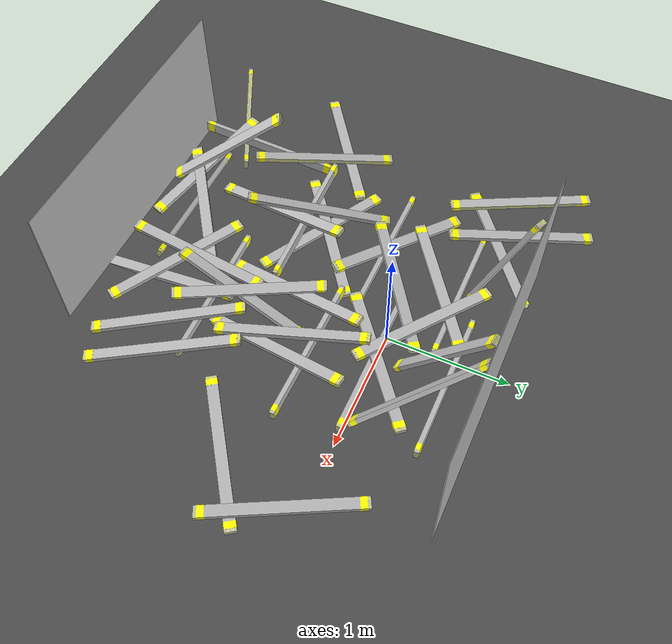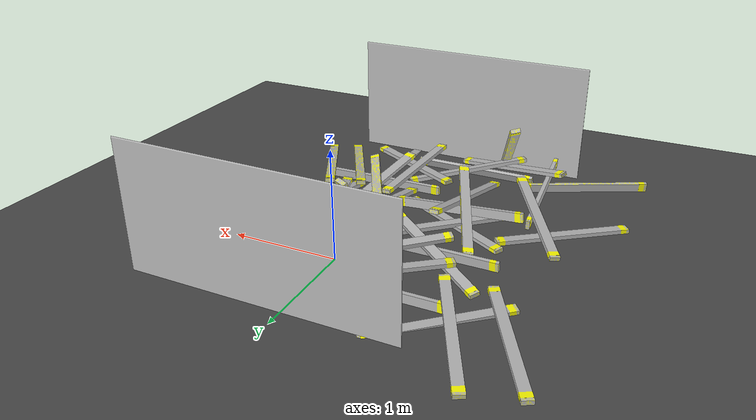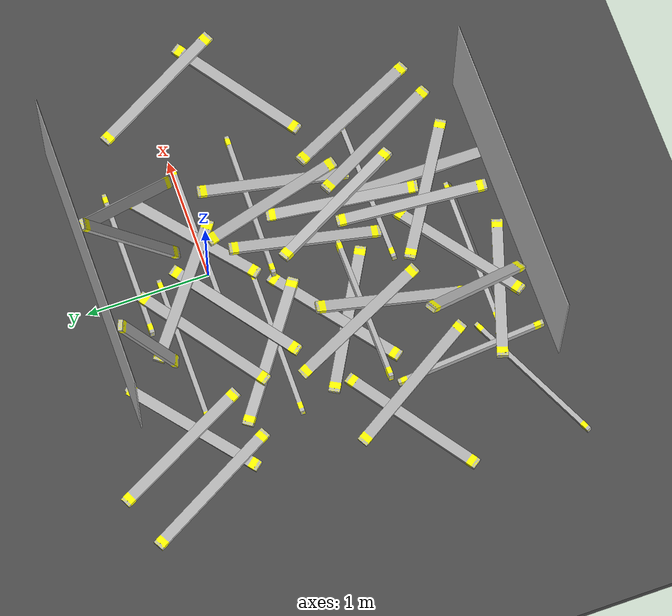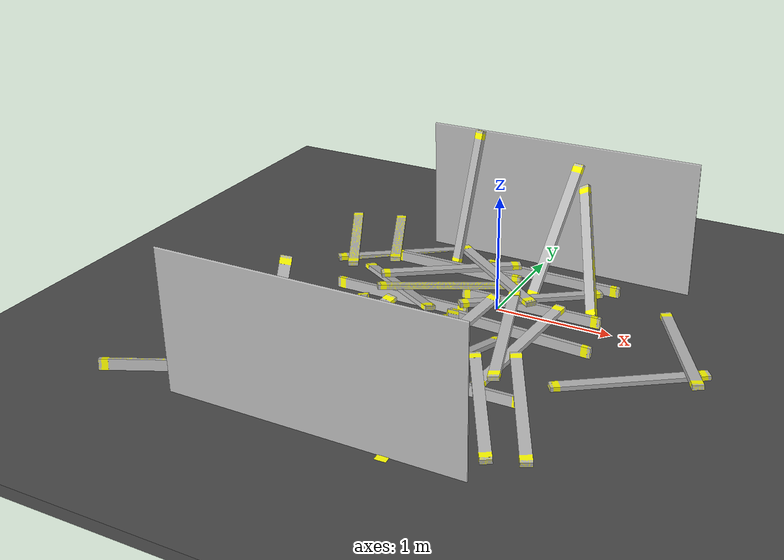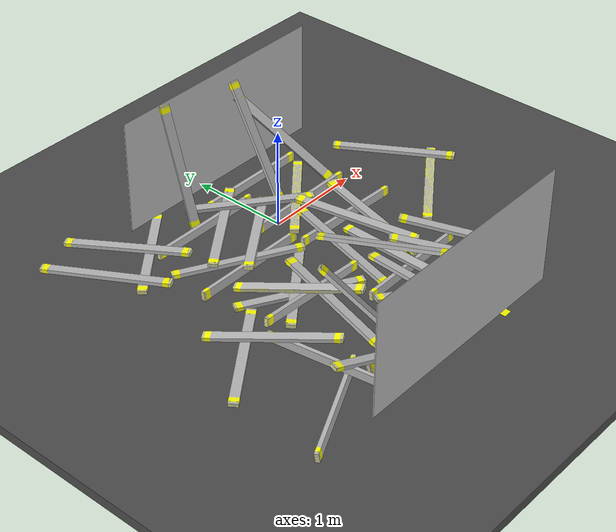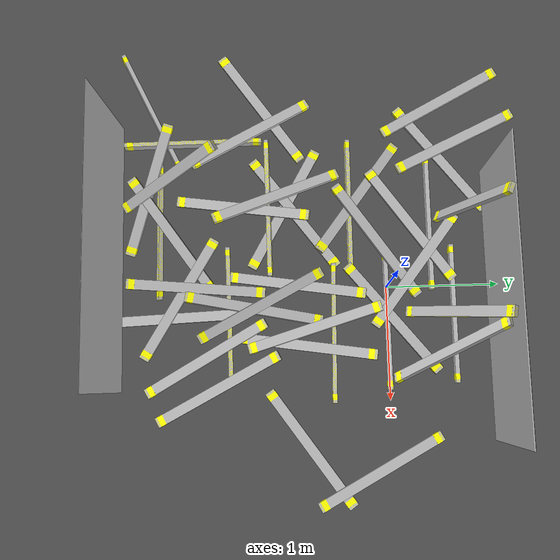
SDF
<sdf version="1.6">
 <world name="default">
  <light name="sun" type="directional">
   <pose>0 0 10 0 -0 0</pose>
   <diffuse>0.8 0.8 0.8 1</diffuse>
   <specular>0.1 0.1 0.1 1</specular>
   <attenuation>
    <range>1000</range>
    <constant>0.9</constant>
    <linear>0.01</linear>
    <quadratic>0.001</quadratic>
   </attenuation>
   <direction>-0.5 0.5 -1</direction>
  </light>
  <model name="ground_plane">
   <static>1</static>
   <link name="link">
    <collision name="collision">
     <geometry><plane><normal>0 0 1</normal><size>100 100</size></plane></geometry>
     <surface><friction><ode><mu>100</mu><mu2>50</mu2></ode></friction></surface>
    </collision>
    <visual name="visual">
     <cast_shadows>0</cast_shadows>
     <geometry><plane><normal>0 0 1</normal><size>100 100</size></plane></geometry>
     <material>
      <script><uri>file://media/materials/scripts/gazebo.material</uri><name>Gazebo/Grey</name></script>
     </material>
    </visual>
   </link>
  </model>
  <gravity>0 0 -9.8</gravity>
  <magnetic_field>6e-06 2.3e-05 -4.2e-05</magnetic_field>
  <atmosphere type="adiabatic"/>
  <physics name="default_physics" default="0" type="ode">
   <max_step_size>0.001</max_step_size>
   <real_time_factor>1</real_time_factor>
   <real_time_update_rate>1000</real_time_update_rate>
  </physics>
  <scene><ambient>0.4 0.4 0.4 1</ambient><background>0.7 0.7 0.7 1</background><shadows>1</shadows></scene>
  <spherical_coordinates>
   <surface_model>EARTH_WGS84</surface_model>
   <latitude_deg>0</latitude_deg>
   <longitude_deg>0</longitude_deg>
   <elevation>0</elevation>
   <heading_deg>0</heading_deg>
  </spherical_coordinates>
  <model name="asphalt_plane">
   <static>1</static>
   <link name="link">
    <collision name="collision"><geometry><box><size>20 20 0.1</size></box></geometry></collision>
    <visual name="visual">
     <cast_shadows>0</cast_shadows>
     <geometry><box><size>20 20 0.1</size></box></geometry>
     <material>
      <script>
       <uri>model://asphalt_plane/materials/scripts</uri>
       <uri>model://asphalt_plane/materials/textures</uri>
       <name>vrc/asphalt</name>
      </script>
     </material>
    </visual>
   </link>
   <pose>0.013797 -0.037077 0 0 -0 0</pose>
  </model>
  <model name="nist_maze_wall_240">
   <static>1</static>
   <link name="nist__maze_wall_240_link">
    <collision name="collision">
     <geometry>
      <mesh><uri>model://nist_maze_wall_240/meshes/nist_maze_wall_240.dae</uri><scale>1 1 1</scale></mesh>
     </geometry>
    </collision>
    <visual name="visual">
     <geometry>
      <mesh><uri>model://nist_maze_wall_240/meshes/nist_maze_wall_240.dae</uri><scale>1 1 1</scale></mesh>
     </geometry>
    </visual>
   </link>
   <pose>1.36498 0.295254 0.622091 3.14159 -1.56495 3.14159</pose>
  </model>
  <model name="nist_maze_wall_240_clone">
   <static>1</static>
   <link name="nist__maze_wall_240_link">
    <collision name="collision">
     <geometry>
      <mesh><uri>model://nist_maze_wall_240/meshes/nist_maze_wall_240.dae</uri><scale>1 1 1</scale></mesh>
     </geometry>
    </collision>
    <visual name="visual">
     <geometry>
      <mesh><uri>model://nist_maze_wall_240/meshes/nist_maze_wall_240.dae</uri><scale>1 1 1</scale></mesh>
     </geometry>
    </visual>
   </link>
   <pose>0.867042 -2.96104 0.6203 3.14159 -1.56495 3.14159</pose>
  </model>
  <model name="lumber_2x4x48">
   <link name="link">
    <inertial>
     <mass>1.4111</mass>
     <inertia><ixx>0.0011</ixx><ixy>0</ixy><ixz>0</ixz><iyy>0.1771</iyy><iyz>0</iyz><izz>0.1763</izz></inertia>
    </inertial>
    <collision name="collision">
     <geometry><box><size>1.2192 0.038 0.0888</size></box></geometry>
     <surface>
      <bounce><restitution_coefficient>0.01</restitution_coefficient><threshold>5</threshold></bounce>
      <friction><ode><mu>5</mu><mu2>5</mu2></ode></friction>
      <contact>
       <ode>
        <soft_cfm>0.001</soft_cfm>
        <kp>10000</kp>
        <kd>1000</kd>
        <max_vel>0.01</max_vel>
        <min_depth>0.001</min_depth>
       </ode>
      </contact>
     </surface>
    </collision>
    <visual name="visual">
     <geometry><mesh><uri>model://drc_practice_2x4/meshes/2x4x48.dae</uri><scale>1 1 1</scale></mesh></geometry>
    </visual>
   </link>
   <pose>0.301221 -0.010214 0.092234 -0.05262 -0.000609 0.003506</pose>
  </model>
  <model name="lumber_2x4x48_clone">
   <link name="link">
    <inertial>
     <mass>1.4111</mass>
     <inertia><ixx>0.0011</ixx><ixy>0</ixy><ixz>0</ixz><iyy>0.1771</iyy><iyz>0</iyz><izz>0.1763</izz></inertia>
    </inertial>
    <collision name="collision">
     <geometry><box><size>1.2192 0.038 0.0888</size></box></geometry>
     <surface>
      <bounce><restitution_coefficient>0.01</restitution_coefficient><threshold>5</threshold></bounce>
      <friction><ode><mu>5</mu><mu2>5</mu2></ode></friction>
      <contact>
       <ode>
        <soft_cfm>0.001</soft_cfm>
        <kp>10000</kp>
        <kd>1000</kd>
        <max_vel>0.01</max_vel>
        <min_depth>0.001</min_depth>
       </ode>
      </contact>
     </surface>
    </collision>
    <visual name="visual">
     <geometry><mesh><uri>model://drc_practice_2x4/meshes/2x4x48.dae</uri><scale>1 1 1</scale></mesh></geometry>
    </visual>
   </link>
   <pose>-0.565912 0.393162 0.092704 -0.023665 -0.00029 0.000521</pose>
  </model>
  <model name="lumber_2x4x48_clone_0">
   <link name="link">
    <inertial>
     <mass>1.4111</mass>
     <inertia><ixx>0.0011</ixx><ixy>0</ixy><ixz>0</ixz><iyy>0.1771</iyy><iyz>0</iyz><izz>0.1763</izz></inertia>
    </inertial>
    <collision name="collision">
     <geometry><box><size>1.2192 0.038 0.0888</size></box></geometry>
     <surface>
      <bounce><restitution_coefficient>0.01</restitution_coefficient><threshold>5</threshold></bounce>
      <friction><ode><mu>5</mu><mu2>5</mu2></ode></friction>
      <contact>
       <ode>
        <soft_cfm>0.001</soft_cfm>
        <kp>10000</kp>
        <kd>1000</kd>
        <max_vel>0.01</max_vel>
        <min_depth>0.001</min_depth>
       </ode>
      </contact>
     </surface>
    </collision>
    <visual name="visual">
     <geometry><mesh><uri>model://drc_practice_2x4/meshes/2x4x48.dae</uri><scale>1 1 1</scale></mesh></geometry>
    </visual>
   </link>
   <pose>-0.73383 -0.317844 0.093213 -0.097263 -0.000117 -0.002154</pose>
  </model>
  <model name="lumber_2x4x48_clone_1">
   <link name="link">
    <inertial>
     <mass>1.4111</mass>
     <inertia><ixx>0.0011</ixx><ixy>0</ixy><ixz>0</ixz><iyy>0.1771</iyy><iyz>0</iyz><izz>0.1763</izz></inertia>
    </inertial>
    <collision name="collision">
     <geometry><box><size>1.2192 0.038 0.0888</size></box></geometry>
     <surface>
      <bounce><restitution_coefficient>0.01</restitution_coefficient><threshold>5</threshold></bounce>
      <friction><ode><mu>5</mu><mu2>5</mu2></ode></friction>
      <contact>
       <ode>
        <soft_cfm>0.001</soft_cfm>
        <kp>10000</kp>
        <kd>1000</kd>
        <max_vel>0.01</max_vel>
        <min_depth>0.001</min_depth>
       </ode>
      </contact>
     </surface>
    </collision>
    <visual name="visual">
     <geometry><mesh><uri>model://drc_practice_2x4/meshes/2x4x48.dae</uri><scale>1 1 1</scale></mesh></geometry>
    </visual>
   </link>
   <pose>0.256004 0.577758 0.092742 0.009275 -0.000257 0.000272</pose>
  </model>
  <model name="lumber_2x4x48_clone_2">
   <link name="link">
    <inertial>
     <mass>1.4111</mass>
     <inertia><ixx>0.0011</ixx><ixy>0</ixy><ixz>0</ixz><iyy>0.1771</iyy><iyz>0</iyz><izz>0.1763</izz></inertia>
    </inertial>
    <collision name="collision">
     <geometry><box><size>1.2192 0.038 0.0888</size></box></geometry>
     <surface>
      <bounce><restitution_coefficient>0.01</restitution_coefficient><threshold>5</threshold></bounce>
      <friction><ode><mu>5</mu><mu2>5</mu2></ode></friction>
      <contact>
       <ode>
        <soft_cfm>0.001</soft_cfm>
        <kp>10000</kp>
        <kd>1000</kd>
        <max_vel>0.01</max_vel>
        <min_depth>0.001</min_depth>
       </ode>
      </contact>
     </surface>
    </collision>
    <visual name="visual">
     <geometry><mesh><uri>model://drc_practice_2x4/meshes/2x4x48.dae</uri><scale>1 1 1</scale></mesh></geometry>
    </visual>
   </link>
   <pose>0.400843 -0.483598 0.109996 -0.008192 0.028719 -0.016766</pose>
  </model>
  <model name="lumber_2x4x48_clone_3">
   <link name="link">
    <inertial>
     <mass>1.4111</mass>
     <inertia><ixx>0.0011</ixx><ixy>0</ixy><ixz>0</ixz><iyy>0.1771</iyy><iyz>0</iyz><izz>0.1763</izz></inertia>
    </inertial>
    <collision name="collision">
     <geometry><box><size>1.2192 0.038 0.0888</size></box></geometry>
     <surface>
      <bounce><restitution_coefficient>0.01</restitution_coefficient><threshold>5</threshold></bounce>
      <friction><ode><mu>5</mu><mu2>5</mu2></ode></friction>
      <contact>
       <ode>
        <soft_cfm>0.001</soft_cfm>
        <kp>10000</kp>
        <kd>1000</kd>
        <max_vel>0.01</max_vel>
        <min_depth>0.001</min_depth>
       </ode>
      </contact>
     </surface>
    </collision>
    <visual name="visual">
     <geometry><mesh><uri>model://drc_practice_2x4/meshes/2x4x48.dae</uri><scale>1 1 1</scale></mesh></geometry>
    </visual>
   </link>
   <pose>-0.804696 -0.239682 0.140164 1.42376 -0.109174 -0.633497</pose>
  </model>
  <model name="lumber_2x4x48_clone_3_clone">
   <link name="link">
    <inertial>
     <mass>1.4111</mass>
     <inertia><ixx>0.0011</ixx><ixy>0</ixy><ixz>0</ixz><iyy>0.1771</iyy><iyz>0</iyz><izz>0.1763</izz></inertia>
    </inertial>
    <collision name="collision">
     <geometry><box><size>1.2192 0.038 0.0888</size></box></geometry>
     <surface>
      <bounce><restitution_coefficient>0.01</restitution_coefficient><threshold>5</threshold></bounce>
      <friction><ode><mu>5</mu><mu2>5</mu2></ode></friction>
      <contact>
       <ode>
        <soft_cfm>0.001</soft_cfm>
        <kp>10000</kp>
        <kd>1000</kd>
        <max_vel>0.01</max_vel>
        <min_depth>0.001</min_depth>
       </ode>
      </contact>
     </surface>
    </collision>
    <visual name="visual">
     <geometry><mesh><uri>model://drc_practice_2x4/meshes/2x4x48.dae</uri><scale>1 1 1</scale></mesh></geometry>
    </visual>
   </link>
   <pose>-0.124001 0.241637 0.191334 1.56014 -0.000805 -0.652429</pose>
  </model>
  <model name="lumber_2x4x48_clone_3_clone_0">
   <link name="link">
    <inertial>
     <mass>1.4111</mass>
     <inertia><ixx>0.0011</ixx><ixy>0</ixy><ixz>0</ixz><iyy>0.1771</iyy><iyz>0</iyz><izz>0.1763</izz></inertia>
    </inertial>
    <collision name="collision">
     <geometry><box><size>1.2192 0.038 0.0888</size></box></geometry>
     <surface>
      <bounce><restitution_coefficient>0.01</restitution_coefficient><threshold>5</threshold></bounce>
      <friction><ode><mu>5</mu><mu2>5</mu2></ode></friction>
      <contact>
       <ode>
        <soft_cfm>0.001</soft_cfm>
        <kp>10000</kp>
        <kd>1000</kd>
        <max_vel>0.01</max_vel>
        <min_depth>0.001</min_depth>
       </ode>
      </contact>
     </surface>
    </collision>
    <visual name="visual">
     <geometry><mesh><uri>model://drc_practice_2x4/meshes/2x4x48.dae</uri><scale>1 1 1</scale></mesh></geometry>
    </visual>
   </link>
   <pose>-0.534744 0.219553 0.156775 1.56787 0.006475 0.625723</pose>
  </model>
  <model name="lumber_2x4x48_clone_3_clone_0_clone">
   <link name="link">
    <inertial>
     <mass>1.4111</mass>
     <inertia><ixx>0.0011</ixx><ixy>0</ixy><ixz>0</ixz><iyy>0.1771</iyy><iyz>0</iyz><izz>0.1763</izz></inertia>
    </inertial>
    <collision name="collision">
     <geometry><box><size>1.2192 0.038 0.0888</size></box></geometry>
     <surface>
      <bounce><restitution_coefficient>0.01</restitution_coefficient><threshold>5</threshold></bounce>
      <friction><ode><mu>5</mu><mu2>5</mu2></ode></friction>
      <contact>
       <ode>
        <soft_cfm>0.001</soft_cfm>
        <kp>10000</kp>
        <kd>1000</kd>
        <max_vel>0.01</max_vel>
        <min_depth>0.001</min_depth>
       </ode>
      </contact>
     </surface>
    </collision>
    <visual name="visual">
     <geometry><mesh><uri>model://drc_practice_2x4/meshes/2x4x48.dae</uri><scale>1 1 1</scale></mesh></geometry>
    </visual>
   </link>
   <pose>-0.399796 -0.087623 0.164265 1.44689 0.072724 0.622222</pose>
  </model>
  <model name="lumber_2x4x48_clone_3_clone_0_clone_0">
   <link name="link">
    <inertial>
     <mass>1.4111</mass>
     <inertia><ixx>0.0011</ixx><ixy>0</ixy><ixz>0</ixz><iyy>0.1771</iyy><iyz>0</iyz><izz>0.1763</izz></inertia>
    </inertial>
    <collision name="collision">
     <geometry><box><size>1.2192 0.038 0.0888</size></box></geometry>
     <surface>
      <bounce><restitution_coefficient>0.01</restitution_coefficient><threshold>5</threshold></bounce>
      <friction><ode><mu>5</mu><mu2>5</mu2></ode></friction>
      <contact>
       <ode>
        <soft_cfm>0.001</soft_cfm>
        <kp>10000</kp>
        <kd>1000</kd>
        <max_vel>0.01</max_vel>
        <min_depth>0.001</min_depth>
       </ode>
      </contact>
     </surface>
    </collision>
    <visual name="visual">
     <geometry><mesh><uri>model://drc_practice_2x4/meshes/2x4x48.dae</uri><scale>1 1 1</scale></mesh></geometry>
    </visual>
   </link>
   <pose>0.290678 0.031887 0.151073 1.52902 0.033754 0.690356</pose>
  </model>
  <model name="lumber_2x4x48_clone_3_clone_0_clone_1">
   <link name="link">
    <inertial>
     <mass>1.4111</mass>
     <inertia><ixx>0.0011</ixx><ixy>0</ixy><ixz>0</ixz><iyy>0.1771</iyy><iyz>0</iyz><izz>0.1763</izz></inertia>
    </inertial>
    <collision name="collision">
     <geometry><box><size>1.2192 0.038 0.0888</size></box></geometry>
     <surface>
      <bounce><restitution_coefficient>0.01</restitution_coefficient><threshold>5</threshold></bounce>
      <friction><ode><mu>5</mu><mu2>5</mu2></ode></friction>
      <contact>
       <ode>
        <soft_cfm>0.001</soft_cfm>
        <kp>10000</kp>
        <kd>1000</kd>
        <max_vel>0.01</max_vel>
        <min_depth>0.001</min_depth>
       </ode>
      </contact>
     </surface>
    </collision>
    <visual name="visual">
     <geometry><mesh><uri>model://drc_practice_2x4/meshes/2x4x48.dae</uri><scale>1 1 1</scale></mesh></geometry>
    </visual>
   </link>
   <pose>-0.59652 0.665387 0.63568 1.26004 -1.24657 1.46899</pose>
  </model>
  <model name="lumber_2x4x48_clone_1_clone">
   <link name="link">
    <inertial>
     <mass>1.4111</mass>
     <inertia><ixx>0.0011</ixx><ixy>0</ixy><ixz>0</ixz><iyy>0.1771</iyy><iyz>0</iyz><izz>0.1763</izz></inertia>
    </inertial>
    <collision name="collision">
     <geometry><box><size>1.2192 0.038 0.0888</size></box></geometry>
     <surface>
      <bounce><restitution_coefficient>0.01</restitution_coefficient><threshold>5</threshold></bounce>
      <friction><ode><mu>5</mu><mu2>5</mu2></ode></friction>
      <contact>
       <ode>
        <soft_cfm>0.001</soft_cfm>
        <kp>10000</kp>
        <kd>1000</kd>
        <max_vel>0.01</max_vel>
        <min_depth>0.001</min_depth>
       </ode>
      </contact>
     </surface>
    </collision>
    <visual name="visual">
     <geometry><mesh><uri>model://drc_practice_2x4/meshes/2x4x48.dae</uri><scale>1 1 1</scale></mesh></geometry>
    </visual>
   </link>
   <pose>-0.540558 -2.01359 0.095109 -0.391321 -0.000313 -0.003725</pose>
  </model>
  <model name="lumber_2x4x48_clone_3_clone_0_clone_0_clone">
   <link name="link">
    <inertial>
     <mass>1.4111</mass>
     <inertia><ixx>0.0011</ixx><ixy>0</ixy><ixz>0</ixz><iyy>0.1771</iyy><iyz>0</iyz><izz>0.1763</izz></inertia>
    </inertial>
    <collision name="collision">
     <geometry><box><size>1.2192 0.038 0.0888</size></box></geometry>
     <surface>
      <bounce><restitution_coefficient>0.01</restitution_coefficient><threshold>5</threshold></bounce>
      <friction><ode><mu>5</mu><mu2>5</mu2></ode></friction>
      <contact>
       <ode>
        <soft_cfm>0.001</soft_cfm>
        <kp>10000</kp>
        <kd>1000</kd>
        <max_vel>0.01</max_vel>
        <min_depth>0.001</min_depth>
       </ode>
      </contact>
     </surface>
    </collision>
    <visual name="visual">
     <geometry><mesh><uri>model://drc_practice_2x4/meshes/2x4x48.dae</uri><scale>1 1 1</scale></mesh></geometry>
    </visual>
   </link>
   <pose>-0.503845 -1.8996 0.144189 1.69657 0.11714 0.606004</pose>
  </model>
  <model name="lumber_2x4x48_clone_3_clone_0_clone_0_clone_0">
   <link name="link">
    <inertial>
     <mass>1.4111</mass>
     <inertia><ixx>0.0011</ixx><ixy>0</ixy><ixz>0</ixz><iyy>0.1771</iyy><iyz>0</iyz><izz>0.1763</izz></inertia>
    </inertial>
    <collision name="collision">
     <geometry><box><size>1.2192 0.038 0.0888</size></box></geometry>
     <surface>
      <bounce><restitution_coefficient>0.01</restitution_coefficient><threshold>5</threshold></bounce>
      <friction><ode><mu>5</mu><mu2>5</mu2></ode></friction>
      <contact>
       <ode>
        <soft_cfm>0.001</soft_cfm>
        <kp>10000</kp>
        <kd>1000</kd>
        <max_vel>0.01</max_vel>
        <min_depth>0.001</min_depth>
       </ode>
      </contact>
     </surface>
    </collision>
    <visual name="visual">
     <geometry><mesh><uri>model://drc_practice_2x4/meshes/2x4x48.dae</uri><scale>1 1 1</scale></mesh></geometry>
    </visual>
   </link>
   <pose>0.072635 -1.83313 0.126716 1.61107 -0.048654 2.58859</pose>
  </model>
  <model name="lumber_2x4x48_clone_3_clone_0_clone_0_clone_0_clone">
   <link name="link">
    <inertial>
     <mass>1.4111</mass>
     <inertia><ixx>0.0011</ixx><ixy>0</ixy><ixz>0</ixz><iyy>0.1771</iyy><iyz>0</iyz><izz>0.1763</izz></inertia>
    </inertial>
    <collision name="collision">
     <geometry><box><size>1.2192 0.038 0.0888</size></box></geometry>
     <surface>
      <bounce><restitution_coefficient>0.01</restitution_coefficient><threshold>5</threshold></bounce>
      <friction><ode><mu>5</mu><mu2>5</mu2></ode></friction>
      <contact>
       <ode>
        <soft_cfm>0.001</soft_cfm>
        <kp>10000</kp>
        <kd>1000</kd>
        <max_vel>0.01</max_vel>
        <min_depth>0.001</min_depth>
       </ode>
      </contact>
     </surface>
    </collision>
    <visual name="visual">
     <geometry><mesh><uri>model://drc_practice_2x4/meshes/2x4x48.dae</uri><scale>1 1 1</scale></mesh></geometry>
    </visual>
   </link>
   <pose>-0.910205 -2.09277 0.171362 1.61931 -0.171197 2.81712</pose>
  </model>
  <model name="lumber_2x4x48_clone_3_clone_0_clone_0_clone_0_clone_0">
   <link name="link">
    <inertial>
     <mass>1.4111</mass>
     <inertia><ixx>0.0011</ixx><ixy>0</ixy><ixz>0</ixz><iyy>0.1771</iyy><iyz>0</iyz><izz>0.1763</izz></inertia>
    </inertial>
    <collision name="collision">
     <geometry><box><size>1.2192 0.038 0.0888</size></box></geometry>
     <surface>
      <bounce><restitution_coefficient>0.01</restitution_coefficient><threshold>5</threshold></bounce>
      <friction><ode><mu>5</mu><mu2>5</mu2></ode></friction>
      <contact>
       <ode>
        <soft_cfm>0.001</soft_cfm>
        <kp>10000</kp>
        <kd>1000</kd>
        <max_vel>0.01</max_vel>
        <min_depth>0.001</min_depth>
       </ode>
      </contact>
     </surface>
    </collision>
    <visual name="visual">
     <geometry><mesh><uri>model://drc_practice_2x4/meshes/2x4x48.dae</uri><scale>1 1 1</scale></mesh></geometry>
    </visual>
   </link>
   <pose>-0.726318 -0.89964 0.06602 1.60735 -0.00037 2.62936</pose>
  </model>
  <model name="lumber_2x4x48_clone_0_clone">
   <link name="link">
    <inertial>
     <mass>1.4111</mass>
     <inertia><ixx>0.0011</ixx><ixy>0</ixy><ixz>0</ixz><iyy>0.1771</iyy><iyz>0</iyz><izz>0.1763</izz></inertia>
    </inertial>
    <collision name="collision">
     <geometry><box><size>1.2192 0.038 0.0888</size></box></geometry>
     <surface>
      <bounce><restitution_coefficient>0.01</restitution_coefficient><threshold>5</threshold></bounce>
      <friction><ode><mu>5</mu><mu2>5</mu2></ode></friction>
      <contact>
       <ode>
        <soft_cfm>0.001</soft_cfm>
        <kp>10000</kp>
        <kd>1000</kd>
        <max_vel>0.01</max_vel>
        <min_depth>0.001</min_depth>
       </ode>
      </contact>
     </surface>
    </collision>
    <visual name="visual">
     <geometry><mesh><uri>model://drc_practice_2x4/meshes/2x4x48.dae</uri><scale>1 1 1</scale></mesh></geometry>
    </visual>
   </link>
   <pose>-0.723761 -1.03834 0.148036 0.027965 0.064024 0.008572</pose>
  </model>
  <model name="lumber_2x4x48_clone_0_clone_0">
   <link name="link">
    <inertial>
     <mass>1.4111</mass>
     <inertia><ixx>0.0011</ixx><ixy>0</ixy><ixz>0</ixz><iyy>0.1771</iyy><iyz>0</iyz><izz>0.1763</izz></inertia>
    </inertial>
    <collision name="collision">
     <geometry><box><size>1.2192 0.038 0.0888</size></box></geometry>
     <surface>
      <bounce><restitution_coefficient>0.01</restitution_coefficient><threshold>5</threshold></bounce>
      <friction><ode><mu>5</mu><mu2>5</mu2></ode></friction>
      <contact>
       <ode>
        <soft_cfm>0.001</soft_cfm>
        <kp>10000</kp>
        <kd>1000</kd>
        <max_vel>0.01</max_vel>
        <min_depth>0.001</min_depth>
       </ode>
      </contact>
     </surface>
    </collision>
    <visual name="visual">
     <geometry><mesh><uri>model://drc_practice_2x4/meshes/2x4x48.dae</uri><scale>1 1 1</scale></mesh></geometry>
    </visual>
   </link>
   <pose>0.227789 -1.40189 0.090987 -0.10807 0.002069 0.017013</pose>
  </model>
  <model name="lumber_2x4x48_clone_3_clone_0_clone_1_clone">
   <link name="link">
    <inertial>
     <mass>1.4111</mass>
     <inertia><ixx>0.0011</ixx><ixy>0</ixy><ixz>0</ixz><iyy>0.1771</iyy><iyz>0</iyz><izz>0.1763</izz></inertia>
    </inertial>
    <collision name="collision">
     <geometry><box><size>1.2192 0.038 0.0888</size></box></geometry>
     <surface>
      <bounce><restitution_coefficient>0.01</restitution_coefficient><threshold>5</threshold></bounce>
      <friction><ode><mu>5</mu><mu2>5</mu2></ode></friction>
      <contact>
       <ode>
        <soft_cfm>0.001</soft_cfm>
        <kp>10000</kp>
        <kd>1000</kd>
        <max_vel>0.01</max_vel>
        <min_depth>0.001</min_depth>
       </ode>
      </contact>
     </surface>
    </collision>
    <visual name="visual">
     <geometry><mesh><uri>model://drc_practice_2x4/meshes/2x4x48.dae</uri><scale>1 1 1</scale></mesh></geometry>
    </visual>
   </link>
   <pose>-0.722411 -1.2665 0.170409 1.66363 -0.163139 1.40205</pose>
  </model>
  <model name="lumber_2x4x48_clone_3_clone_0_clone_1_clone_clone">
   <link name="link">
    <inertial>
     <mass>1.4111</mass>
     <inertia><ixx>0.0011</ixx><ixy>0</ixy><ixz>0</ixz><iyy>0.1771</iyy><iyz>0</iyz><izz>0.1763</izz></inertia>
    </inertial>
    <collision name="collision">
     <geometry><box><size>1.2192 0.038 0.0888</size></box></geometry>
     <surface>
      <bounce><restitution_coefficient>0.01</restitution_coefficient><threshold>5</threshold></bounce>
      <friction><ode><mu>5</mu><mu2>5</mu2></ode></friction>
      <contact>
       <ode>
        <soft_cfm>0.001</soft_cfm>
        <kp>10000</kp>
        <kd>1000</kd>
        <max_vel>0.01</max_vel>
        <min_depth>0.001</min_depth>
       </ode>
      </contact>
     </surface>
    </collision>
    <visual name="visual">
     <geometry><mesh><uri>model://drc_practice_2x4/meshes/2x4x48.dae</uri><scale>1 1 1</scale></mesh></geometry>
    </visual>
   </link>
   <pose>0.179621 -1.17327 0.168711 1.44874 0.156753 1.38367</pose>
  </model>
  <model name="lumber_2x4x48_clone_3_clone_0_clone_1_clone_clone_0">
   <link name="link">
    <inertial>
     <mass>1.4111</mass>
     <inertia><ixx>0.0011</ixx><ixy>0</ixy><ixz>0</ixz><iyy>0.1771</iyy><iyz>0</iyz><izz>0.1763</izz></inertia>
    </inertial>
    <collision name="collision">
     <geometry><box><size>1.2192 0.038 0.0888</size></box></geometry>
     <surface>
      <bounce><restitution_coefficient>0.01</restitution_coefficient><threshold>5</threshold></bounce>
      <friction><ode><mu>5</mu><mu2>5</mu2></ode></friction>
      <contact>
       <ode>
        <soft_cfm>0.001</soft_cfm>
        <kp>10000</kp>
        <kd>1000</kd>
        <max_vel>0.01</max_vel>
        <min_depth>0.001</min_depth>
       </ode>
      </contact>
     </surface>
    </collision>
    <visual name="visual">
     <geometry><mesh><uri>model://drc_practice_2x4/meshes/2x4x48.dae</uri><scale>1 1 1</scale></mesh></geometry>
    </visual>
   </link>
   <pose>0.516297 -0.713685 0.141588 1.57645 -0.121922 1.41691</pose>
  </model>
  <model name="lumber_2x4x48_clone_3_clone_0_clone_1_clone_clone_1">
   <link name="link">
    <inertial>
     <mass>1.4111</mass>
     <inertia><ixx>0.0011</ixx><ixy>0</ixy><ixz>0</ixz><iyy>0.1771</iyy><iyz>0</iyz><izz>0.1763</izz></inertia>
    </inertial>
    <collision name="collision">
     <geometry><box><size>1.2192 0.038 0.0888</size></box></geometry>
     <surface>
      <bounce><restitution_coefficient>0.01</restitution_coefficient><threshold>5</threshold></bounce>
      <friction><ode><mu>5</mu><mu2>5</mu2></ode></friction>
      <contact>
       <ode>
        <soft_cfm>0.001</soft_cfm>
        <kp>10000</kp>
        <kd>1000</kd>
        <max_vel>0.01</max_vel>
        <min_depth>0.001</min_depth>
       </ode>
      </contact>
     </surface>
    </collision>
    <visual name="visual">
     <geometry><mesh><uri>model://drc_practice_2x4/meshes/2x4x48.dae</uri><scale>1 1 1</scale></mesh></geometry>
    </visual>
   </link>
   <pose>-1.33276 -1.69922 0.154139 3.10208 0.101203 1.61498</pose>
  </model>
  <model name="lumber_2x4x48_clone_3_clone_0_clone_1_clone_clone_2">
   <link name="link">
    <inertial>
     <mass>1.4111</mass>
     <inertia><ixx>0.0011</ixx><ixy>0</ixy><ixz>0</ixz><iyy>0.1771</iyy><iyz>0</iyz><izz>0.1763</izz></inertia>
    </inertial>
    <collision name="collision">
     <geometry><box><size>1.2192 0.038 0.0888</size></box></geometry>
     <surface>
      <bounce><restitution_coefficient>0.01</restitution_coefficient><threshold>5</threshold></bounce>
      <friction><ode><mu>5</mu><mu2>5</mu2></ode></friction>
      <contact>
       <ode>
        <soft_cfm>0.001</soft_cfm>
        <kp>10000</kp>
        <kd>1000</kd>
        <max_vel>0.01</max_vel>
        <min_depth>0.001</min_depth>
       </ode>
      </contact>
     </surface>
    </collision>
    <visual name="visual">
     <geometry><mesh><uri>model://drc_practice_2x4/meshes/2x4x48.dae</uri><scale>1 1 1</scale></mesh></geometry>
    </visual>
   </link>
   <pose>-1.65779 -2.09089 0.092744 -0.15531 0.002346 0.447931</pose>
  </model>
  <model name="lumber_2x4x48_clone_3_clone_0_clone_clone">
   <link name="link">
    <inertial>
     <mass>1.4111</mass>
     <inertia><ixx>0.0011</ixx><ixy>0</ixy><ixz>0</ixz><iyy>0.1771</iyy><iyz>0</iyz><izz>0.1763</izz></inertia>
    </inertial>
    <collision name="collision">
     <geometry><box><size>1.2192 0.038 0.0888</size></box></geometry>
     <surface>
      <bounce><restitution_coefficient>0.01</restitution_coefficient><threshold>5</threshold></bounce>
      <friction><ode><mu>5</mu><mu2>5</mu2></ode></friction>
      <contact>
       <ode>
        <soft_cfm>0.001</soft_cfm>
        <kp>10000</kp>
        <kd>1000</kd>
        <max_vel>0.01</max_vel>
        <min_depth>0.001</min_depth>
       </ode>
      </contact>
     </surface>
    </collision>
    <visual name="visual">
     <geometry><mesh><uri>model://drc_practice_2x4/meshes/2x4x48.dae</uri><scale>1 1 1</scale></mesh></geometry>
    </visual>
   </link>
   <pose>-1.67638 -1.09314 0.067655 1.5708 -0 0.618299</pose>
  </model>
  <model name="lumber_2x4x48_clone_3_clone_0_clone_clone_0">
   <link name="link">
    <inertial>
     <mass>1.4111</mass>
     <inertia><ixx>0.0011</ixx><ixy>0</ixy><ixz>0</ixz><iyy>0.1771</iyy><iyz>0</iyz><izz>0.1763</izz></inertia>
    </inertial>
    <collision name="collision">
     <geometry><box><size>1.2192 0.038 0.0888</size></box></geometry>
     <surface>
      <bounce><restitution_coefficient>0.01</restitution_coefficient><threshold>5</threshold></bounce>
      <friction><ode><mu>5</mu><mu2>5</mu2></ode></friction>
      <contact>
       <ode>
        <soft_cfm>0.001</soft_cfm>
        <kp>10000</kp>
        <kd>1000</kd>
        <max_vel>0.01</max_vel>
        <min_depth>0.001</min_depth>
       </ode>
      </contact>
     </surface>
    </collision>
    <visual name="visual">
     <geometry><mesh><uri>model://drc_practice_2x4/meshes/2x4x48.dae</uri><scale>1 1 1</scale></mesh></geometry>
    </visual>
   </link>
   <pose>1.39623 -0.708186 0.067432 1.56618 0.00029 0.618338</pose>
  </model>
  <model name="lumber_2x4x48_clone_3_clone_0_clone_clone_0_clone">
   <link name="link">
    <inertial>
     <mass>1.4111</mass>
     <inertia><ixx>0.0011</ixx><ixy>0</ixy><ixz>0</ixz><iyy>0.1771</iyy><iyz>0</iyz><izz>0.1763</izz></inertia>
    </inertial>
    <collision name="collision">
     <geometry><box><size>1.2192 0.038 0.0888</size></box></geometry>
     <surface>
      <bounce><restitution_coefficient>0.01</restitution_coefficient><threshold>5</threshold></bounce>
      <friction><ode><mu>5</mu><mu2>5</mu2></ode></friction>
      <contact>
       <ode>
        <soft_cfm>0.001</soft_cfm>
        <kp>10000</kp>
        <kd>1000</kd>
        <max_vel>0.01</max_vel>
        <min_depth>0.001</min_depth>
       </ode>
      </contact>
     </surface>
    </collision>
    <visual name="visual">
     <geometry><mesh><uri>model://drc_practice_2x4/meshes/2x4x48.dae</uri><scale>1 1 1</scale></mesh></geometry>
    </visual>
   </link>
   <pose>-0.678689 -0.80669 0.088804 1.56294 0.034934 0.64904</pose>
  </model>
  <model name="lumber_2x4x48_clone_3_clone_0_clone_1_clone_clone_3">
   <link name="link">
    <inertial>
     <mass>1.4111</mass>
     <inertia><ixx>0.0011</ixx><ixy>0</ixy><ixz>0</ixz><iyy>0.1771</iyy><iyz>0</iyz><izz>0.1763</izz></inertia>
    </inertial>
    <collision name="collision">
     <geometry><box><size>1.2192 0.038 0.0888</size></box></geometry>
     <surface>
      <bounce><restitution_coefficient>0.01</restitution_coefficient><threshold>5</threshold></bounce>
      <friction><ode><mu>5</mu><mu2>5</mu2></ode></friction>
      <contact>
       <ode>
        <soft_cfm>0.001</soft_cfm>
        <kp>10000</kp>
        <kd>1000</kd>
        <max_vel>0.01</max_vel>
        <min_depth>0.001</min_depth>
       </ode>
      </contact>
     </surface>
    </collision>
    <visual name="visual">
     <geometry><mesh><uri>model://drc_practice_2x4/meshes/2x4x48.dae</uri><scale>1 1 1</scale></mesh></geometry>
    </visual>
   </link>
   <pose>-0.022901 -0.79436 0.143054 1.64836 -0.129821 1.40753</pose>
  </model>
  <model name="lumber_2x4x48_clone_3_clone_0_clone_1_clone_clone_4">
   <link name="link">
    <inertial>
     <mass>1.4111</mass>
     <inertia><ixx>0.0011</ixx><ixy>0</ixy><ixz>0</ixz><iyy>0.1771</iyy><iyz>0</iyz><izz>0.1763</izz></inertia>
    </inertial>
    <collision name="collision">
     <geometry><box><size>1.2192 0.038 0.0888</size></box></geometry>
     <surface>
      <bounce><restitution_coefficient>0.01</restitution_coefficient><threshold>5</threshold></bounce>
      <friction><ode><mu>5</mu><mu2>5</mu2></ode></friction>
      <contact>
       <ode>
        <soft_cfm>0.001</soft_cfm>
        <kp>10000</kp>
        <kd>1000</kd>
        <max_vel>0.01</max_vel>
        <min_depth>0.001</min_depth>
       </ode>
      </contact>
     </surface>
    </collision>
    <visual name="visual">
     <geometry><mesh><uri>model://drc_practice_2x4/meshes/2x4x48.dae</uri><scale>1 1 1</scale></mesh></geometry>
    </visual>
   </link>
   <pose>-1.16027 0.524727 0.049489 1.51585 0.028326 0.676715</pose>
  </model>
  <model name="lumber_2x4x48_clone_3_clone_0_clone_1_clone_0">
   <link name="link">
    <inertial>
     <mass>1.4111</mass>
     <inertia><ixx>0.0011</ixx><ixy>0</ixy><ixz>0</ixz><iyy>0.1771</iyy><iyz>0</iyz><izz>0.1763</izz></inertia>
    </inertial>
    <collision name="collision">
     <geometry><box><size>1.2192 0.038 0.0888</size></box></geometry>
     <surface>
      <bounce><restitution_coefficient>0.01</restitution_coefficient><threshold>5</threshold></bounce>
      <friction><ode><mu>5</mu><mu2>5</mu2></ode></friction>
      <contact>
       <ode>
        <soft_cfm>0.001</soft_cfm>
        <kp>10000</kp>
        <kd>1000</kd>
        <max_vel>0.01</max_vel>
        <min_depth>0.001</min_depth>
       </ode>
      </contact>
     </surface>
    </collision>
    <visual name="visual">
     <geometry><mesh><uri>model://drc_practice_2x4/meshes/2x4x48.dae</uri><scale>1 1 1</scale></mesh></geometry>
    </visual>
   </link>
   <pose>0.285554 0.522645 0.557293 1.59196 -0.955868 1.41387</pose>
  </model>
  <model name="lumber_2x4x48_clone_3_clone_0_clone_1_clone_1">
   <link name="link">
    <inertial>
     <mass>1.4111</mass>
     <inertia><ixx>0.0011</ixx><ixy>0</ixy><ixz>0</ixz><iyy>0.1771</iyy><iyz>0</iyz><izz>0.1763</izz></inertia>
    </inertial>
    <collision name="collision">
     <geometry><box><size>1.2192 0.038 0.0888</size></box></geometry>
     <surface>
      <bounce><restitution_coefficient>0.01</restitution_coefficient><threshold>5</threshold></bounce>
      <friction><ode><mu>5</mu><mu2>5</mu2></ode></friction>
      <contact>
       <ode>
        <soft_cfm>0.001</soft_cfm>
        <kp>10000</kp>
        <kd>1000</kd>
        <max_vel>0.01</max_vel>
        <min_depth>0.001</min_depth>
       </ode>
      </contact>
     </surface>
    </collision>
    <visual name="visual">
     <geometry><mesh><uri>model://drc_practice_2x4/meshes/2x4x48.dae</uri><scale>1 1 1</scale></mesh></geometry>
    </visual>
   </link>
   <pose>-0.016498 -1.68413 0.166143 -1.63951 -0.029437 -1.66033</pose>
  </model>
  <model name="lumber_2x4x48_clone_3_clone_0_clone_1_clone_2">
   <link name="link">
    <inertial>
     <mass>1.4111</mass>
     <inertia><ixx>0.0011</ixx><ixy>0</ixy><ixz>0</ixz><iyy>0.1771</iyy><iyz>0</iyz><izz>0.1763</izz></inertia>
    </inertial>
    <collision name="collision">
     <geometry><box><size>1.2192 0.038 0.0888</size></box></geometry>
     <surface>
      <bounce><restitution_coefficient>0.01</restitution_coefficient><threshold>5</threshold></bounce>
      <friction><ode><mu>5</mu><mu2>5</mu2></ode></friction>
      <contact>
       <ode>
        <soft_cfm>0.001</soft_cfm>
        <kp>10000</kp>
        <kd>1000</kd>
        <max_vel>0.01</max_vel>
        <min_depth>0.001</min_depth>
       </ode>
      </contact>
     </surface>
    </collision>
    <visual name="visual">
     <geometry><mesh><uri>model://drc_practice_2x4/meshes/2x4x48.dae</uri><scale>1 1 1</scale></mesh></geometry>
    </visual>
   </link>
   <pose>0.236908 -1.83693 0.087453 -1.56527 0.097839 -1.54134</pose>
  </model>
  <model name="lumber_2x4x48_clone_3_clone_0_clone_clone_0_clone_0">
   <link name="link">
    <inertial>
     <mass>1.4111</mass>
     <inertia><ixx>0.0011</ixx><ixy>0</ixy><ixz>0</ixz><iyy>0.1771</iyy><iyz>0</iyz><izz>0.1763</izz></inertia>
    </inertial>
    <collision name="collision">
     <geometry><box><size>1.2192 0.038 0.0888</size></box></geometry>
     <surface>
      <bounce><restitution_coefficient>0.01</restitution_coefficient><threshold>5</threshold></bounce>
      <friction><ode><mu>5</mu><mu2>5</mu2></ode></friction>
      <contact>
       <ode>
        <soft_cfm>0.001</soft_cfm>
        <kp>10000</kp>
        <kd>1000</kd>
        <max_vel>0.01</max_vel>
        <min_depth>0.001</min_depth>
       </ode>
      </contact>
     </surface>
    </collision>
    <visual name="visual">
     <geometry><mesh><uri>model://drc_practice_2x4/meshes/2x4x48.dae</uri><scale>1 1 1</scale></mesh></geometry>
    </visual>
   </link>
   <pose>-0.932327 -1.87845 0.463 -1.81542 0.660371 -1.21762</pose>
  </model>
  <model name="lumber_2x4x48_clone_3_clone_0_clone_clone_0_clone_0_clone">
   <link name="link">
    <inertial>
     <mass>1.4111</mass>
     <inertia><ixx>0.0011</ixx><ixy>0</ixy><ixz>0</ixz><iyy>0.1771</iyy><iyz>0</iyz><izz>0.1763</izz></inertia>
    </inertial>
    <collision name="collision">
     <geometry><box><size>1.2192 0.038 0.0888</size></box></geometry>
     <surface>
      <bounce><restitution_coefficient>0.01</restitution_coefficient><threshold>5</threshold></bounce>
      <friction><ode><mu>5</mu><mu2>5</mu2></ode></friction>
      <contact>
       <ode>
        <soft_cfm>0.001</soft_cfm>
        <kp>10000</kp>
        <kd>1000</kd>
        <max_vel>0.01</max_vel>
        <min_depth>0.001</min_depth>
       </ode>
      </contact>
     </surface>
    </collision>
    <visual name="visual">
     <geometry><mesh><uri>model://drc_practice_2x4/meshes/2x4x48.dae</uri><scale>1 1 1</scale></mesh></geometry>
    </visual>
   </link>
   <pose>0.606662 0.461636 0.473096 -0.906838 0.700179 -1.1021</pose>
  </model>
  <model name="lumber_2x4x48_clone_3_clone_0_clone_clone_0_clone_0_clone_0">
   <link name="link">
    <inertial>
     <mass>1.4111</mass>
     <inertia><ixx>0.0011</ixx><ixy>0</ixy><ixz>0</ixz><iyy>0.1771</iyy><iyz>0</iyz><izz>0.1763</izz></inertia>
    </inertial>
    <collision name="collision">
     <geometry><box><size>1.2192 0.038 0.0888</size></box></geometry>
     <surface>
      <bounce><restitution_coefficient>0.01</restitution_coefficient><threshold>5</threshold></bounce>
      <friction><ode><mu>5</mu><mu2>5</mu2></ode></friction>
      <contact>
       <ode>
        <soft_cfm>0.001</soft_cfm>
        <kp>10000</kp>
        <kd>1000</kd>
        <max_vel>0.01</max_vel>
        <min_depth>0.001</min_depth>
       </ode>
      </contact>
     </surface>
    </collision>
    <visual name="visual">
     <geometry><mesh><uri>model://drc_practice_2x4/meshes/2x4x48.dae</uri><scale>1 1 1</scale></mesh></geometry>
    </visual>
   </link>
   <pose>0.154176 -1.11337 0.215328 -1.80747 -0.009977 -1.085</pose>
  </model>
  <model name="lumber_2x4x48_clone_3_clone_0_clone_clone_0_clone_0_clone_1">
   <link name="link">
    <inertial>
     <mass>1.4111</mass>
     <inertia><ixx>0.0011</ixx><ixy>0</ixy><ixz>0</ixz><iyy>0.1771</iyy><iyz>0</iyz><izz>0.1763</izz></inertia>
    </inertial>
    <collision name="collision">
     <geometry><box><size>1.2192 0.038 0.0888</size></box></geometry>
     <surface>
      <bounce><restitution_coefficient>0.01</restitution_coefficient><threshold>5</threshold></bounce>
      <friction><ode><mu>5</mu><mu2>5</mu2></ode></friction>
      <contact>
       <ode>
        <soft_cfm>0.001</soft_cfm>
        <kp>10000</kp>
        <kd>1000</kd>
        <max_vel>0.01</max_vel>
        <min_depth>0.001</min_depth>
       </ode>
      </contact>
     </surface>
    </collision>
    <visual name="visual">
     <geometry><mesh><uri>model://drc_practice_2x4/meshes/2x4x48.dae</uri><scale>1 1 1</scale></mesh></geometry>
    </visual>
   </link>
   <pose>-0.817933 -0.959898 0.211132 -1.45231 -0.229639 -1.17978</pose>
  </model>
  <model name="lumber_2x4x48_clone_3_clone_0_clone_clone_0_clone_0_clone_2">
   <link name="link">
    <inertial>
     <mass>1.4111</mass>
     <inertia><ixx>0.0011</ixx><ixy>0</ixy><ixz>0</ixz><iyy>0.1771</iyy><iyz>0</iyz><izz>0.1763</izz></inertia>
    </inertial>
    <collision name="collision">
     <geometry><box><size>1.2192 0.038 0.0888</size></box></geometry>
     <surface>
      <bounce><restitution_coefficient>0.01</restitution_coefficient><threshold>5</threshold></bounce>
      <friction><ode><mu>5</mu><mu2>5</mu2></ode></friction>
      <contact>
       <ode>
        <soft_cfm>0.001</soft_cfm>
        <kp>10000</kp>
        <kd>1000</kd>
        <max_vel>0.01</max_vel>
        <min_depth>0.001</min_depth>
       </ode>
      </contact>
     </surface>
    </collision>
    <visual name="visual">
     <geometry><mesh><uri>model://drc_practice_2x4/meshes/2x4x48.dae</uri><scale>1 1 1</scale></mesh></geometry>
    </visual>
   </link>
   <pose>-1.41271 -1.18929 0.158448 -1.51298 -0.145387 -1.04365</pose>
  </model>
  <model name="lumber_2x4x48_clone_3_clone_0_clone_clone_0_clone_0_clone_3">
   <link name="link">
    <inertial>
     <mass>1.4111</mass>
     <inertia><ixx>0.0011</ixx><ixy>0</ixy><ixz>0</ixz><iyy>0.1771</iyy><iyz>0</iyz><izz>0.1763</izz></inertia>
    </inertial>
    <collision name="collision">
     <geometry><box><size>1.2192 0.038 0.0888</size></box></geometry>
     <surface>
      <bounce><restitution_coefficient>0.01</restitution_coefficient><threshold>5</threshold></bounce>
      <friction><ode><mu>5</mu><mu2>5</mu2></ode></friction>
      <contact>
       <ode>
        <soft_cfm>0.001</soft_cfm>
        <kp>10000</kp>
        <kd>1000</kd>
        <max_vel>0.01</max_vel>
        <min_depth>0.001</min_depth>
       </ode>
      </contact>
     </surface>
    </collision>
    <visual name="visual">
     <geometry><mesh><uri>model://drc_practice_2x4/meshes/2x4x48.dae</uri><scale>1 1 1</scale></mesh></geometry>
    </visual>
   </link>
   <pose>0.35831 -0.648625 0.175308 -1.46388 0.084963 -1.28441</pose>
  </model>
  <model name="lumber_2x4x48_clone_3_clone_0_clone_clone_0_clone_0_clone_4">
   <link name="link">
    <inertial>
     <mass>1.4111</mass>
     <inertia><ixx>0.0011</ixx><ixy>0</ixy><ixz>0</ixz><iyy>0.1771</iyy><iyz>0</iyz><izz>0.1763</izz></inertia>
    </inertial>
    <collision name="collision">
     <geometry><box><size>1.2192 0.038 0.0888</size></box></geometry>
     <surface>
      <bounce><restitution_coefficient>0.01</restitution_coefficient><threshold>5</threshold></bounce>
      <friction><ode><mu>5</mu><mu2>5</mu2></ode></friction>
      <contact>
       <ode>
        <soft_cfm>0.001</soft_cfm>
        <kp>10000</kp>
        <kd>1000</kd>
        <max_vel>0.01</max_vel>
        <min_depth>0.001</min_depth>
       </ode>
      </contact>
     </surface>
    </collision>
    <visual name="visual">
     <geometry><mesh><uri>model://drc_practice_2x4/meshes/2x4x48.dae</uri><scale>1 1 1</scale></mesh></geometry>
    </visual>
   </link>
   <pose>0.864435 -1.50002 0.14022 -1.5383 0.117002 -1.09383</pose>
  </model>
  <model name="lumber_2x4x48_clone_3_clone_0_clone_clone_0_clone_0_clone_5">
   <link name="link">
    <inertial>
     <mass>1.4111</mass>
     <inertia><ixx>0.0011</ixx><ixy>0</ixy><ixz>0</ixz><iyy>0.1771</iyy><iyz>0</iyz><izz>0.1763</izz></inertia>
    </inertial>
    <collision name="collision">
     <geometry><box><size>1.2192 0.038 0.0888</size></box></geometry>
     <surface>
      <bounce><restitution_coefficient>0.01</restitution_coefficient><threshold>5</threshold></bounce>
      <friction><ode><mu>5</mu><mu2>5</mu2></ode></friction>
      <contact>
       <ode>
        <soft_cfm>0.001</soft_cfm>
        <kp>10000</kp>
        <kd>1000</kd>
        <max_vel>0.01</max_vel>
        <min_depth>0.001</min_depth>
       </ode>
      </contact>
     </surface>
    </collision>
    <visual name="visual">
     <geometry><mesh><uri>model://drc_practice_2x4/meshes/2x4x48.dae</uri><scale>1 1 1</scale></mesh></geometry>
    </visual>
   </link>
   <pose>1.59931 -0.109226 0.090659 -1.56744 -0.037571 -1.0788</pose>
  </model>
  <model name="lumber_2x4x48_clone_3_clone_0_clone_clone_0_clone_0_clone_6">
   <link name="link">
    <inertial>
     <mass>1.4111</mass>
     <inertia><ixx>0.0011</ixx><ixy>0</ixy><ixz>0</ixz><iyy>0.1771</iyy><iyz>0</iyz><izz>0.1763</izz></inertia>
    </inertial>
    <collision name="collision">
     <geometry><box><size>1.2192 0.038 0.0888</size></box></geometry>
     <surface>
      <bounce><restitution_coefficient>0.01</restitution_coefficient><threshold>5</threshold></bounce>
      <friction><ode><mu>5</mu><mu2>5</mu2></ode></friction>
      <contact>
       <ode>
        <soft_cfm>0.001</soft_cfm>
        <kp>10000</kp>
        <kd>1000</kd>
        <max_vel>0.01</max_vel>
        <min_depth>0.001</min_depth>
       </ode>
      </contact>
     </surface>
    </collision>
    <visual name="visual">
     <geometry><mesh><uri>model://drc_practice_2x4/meshes/2x4x48.dae</uri><scale>1 1 1</scale></mesh></geometry>
    </visual>
   </link>
   <pose>-1.6884 0.542021 0.088125 -1.59238 -0.032505 -1.07528</pose>
  </model>
  <model name="lumber_2x4x48_clone_3_clone_0_clone_clone_0_clone_0_clone_7">
   <link name="link">
    <inertial>
     <mass>1.4111</mass>
     <inertia><ixx>0.0011</ixx><ixy>0</ixy><ixz>0</ixz><iyy>0.1771</iyy><iyz>0</iyz><izz>0.1763</izz></inertia>
    </inertial>
    <collision name="collision">
     <geometry><box><size>1.2192 0.038 0.0888</size></box></geometry>
     <surface>
      <bounce><restitution_coefficient>0.01</restitution_coefficient><threshold>5</threshold></bounce>
      <friction><ode><mu>5</mu><mu2>5</mu2></ode></friction>
      <contact>
       <ode>
        <soft_cfm>0.001</soft_cfm>
        <kp>10000</kp>
        <kd>1000</kd>
        <max_vel>0.01</max_vel>
        <min_depth>0.001</min_depth>
       </ode>
      </contact>
     </surface>
    </collision>
    <visual name="visual">
     <geometry><mesh><uri>model://drc_practice_2x4/meshes/2x4x48.dae</uri><scale>1 1 1</scale></mesh></geometry>
    </visual>
   </link>
   <pose>-1.30424 0.664332 0.125676 -1.56973 -0.09526 -1.11344</pose>
  </model>
  <model name="lumber_2x4x48_clone_3_clone_0_clone_clone_0_clone_0_clone_8">
   <link name="link">
    <inertial>
     <mass>1.4111</mass>
     <inertia><ixx>0.0011</ixx><ixy>0</ixy><ixz>0</ixz><iyy>0.1771</iyy><iyz>0</iyz><izz>0.1763</izz></inertia>
    </inertial>
    <collision name="collision">
     <geometry><box><size>1.2192 0.038 0.0888</size></box></geometry>
     <surface>
      <bounce><restitution_coefficient>0.01</restitution_coefficient><threshold>5</threshold></bounce>
      <friction><ode><mu>5</mu><mu2>5</mu2></ode></friction>
      <contact>
       <ode>
        <soft_cfm>0.001</soft_cfm>
        <kp>10000</kp>
        <kd>1000</kd>
        <max_vel>0.01</max_vel>
        <min_depth>0.001</min_depth>
       </ode>
      </contact>
     </surface>
    </collision>
    <visual name="visual">
     <geometry><mesh><uri>model://drc_practice_2x4/meshes/2x4x48.dae</uri><scale>1 1 1</scale></mesh></geometry>
    </visual>
   </link>
   <pose>0.598488 -1.60219 0.131303 1.62201 0.101183 -1.06286</pose>
  </model>
 </world>
</sdf>
